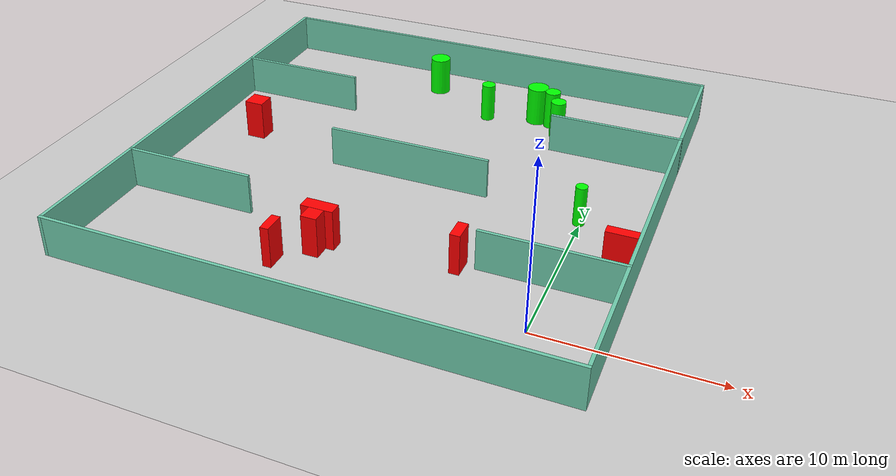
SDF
<sdf version="1.7">
 <world name="default">
  <light name="sun" type="directional">
   <pose>0 0 10 0 -0 0</pose>
   <diffuse>0.8 0.8 0.8 1</diffuse>
   <specular>0.2 0.2 0.2 1</specular>
   <attenuation>
    <range>1000</range>
    <constant>0.9</constant>
    <linear>0.01</linear>
    <quadratic>0.001</quadratic>
   </attenuation>
   <direction>-0.5 0.1 -0.9</direction>
   <spot><inner_angle>0</inner_angle><outer_angle>0</outer_angle><falloff>0</falloff></spot>
  </light>
  <model name="ground_plane">
   <static>1</static>
   <link name="link">
    <collision name="collision">
     <geometry><plane><normal>0 0 1</normal><size>100 100</size></plane></geometry>
     <surface>
      <contact><collide_bitmask>65535</collide_bitmask></contact>
      <friction><ode><mu>100</mu><mu2>50</mu2></ode></friction>
     </surface>
    </collision>
    <visual name="visual">
     <cast_shadows>0</cast_shadows>
     <geometry><plane><normal>0 0 1</normal><size>100 100</size></plane></geometry>
     <material>
      <script><uri>file://media/materials/scripts/gazebo.material</uri><name>Gazebo/Grey</name></script>
     </material>
    </visual>
   </link>
  </model>
  <gravity>0 0 -9.8</gravity>
  <magnetic_field>6e-06 2.3e-05 -4.2e-05</magnetic_field>
  <atmosphere type="adiabatic"/>
  <physics type="ode">
   <max_step_size>0.001</max_step_size>
   <real_time_factor>1</real_time_factor>
   <real_time_update_rate>1000</real_time_update_rate>
  </physics>
  <scene><ambient>0.4 0.4 0.4 1</ambient><background>0.7 0.7 0.7 1</background><shadows>1</shadows></scene>
  <spherical_coordinates>
   <surface_model>EARTH_WGS84</surface_model>
   <latitude_deg>0</latitude_deg>
   <longitude_deg>0</longitude_deg>
   <elevation>0</elevation>
   <heading_deg>0</heading_deg>
  </spherical_coordinates>
  <model name="my_base_walls">
   <link name="Wall_10">
    <collision name="Wall_10_Collision">
     <geometry><box><size>8.2 0.2 2.5</size></box></geometry>
     <pose>0 0 1.25 0 -0 0</pose>
    </collision>
    <visual name="Wall_10_Visual">
     <pose>0 0 1.25 0 -0 0</pose>
     <geometry><box><size>8.2 0.2 2.5</size></box></geometry>
     <material>
      <script><uri>file://media/materials/scripts/gazebo.material</uri><name>Gazebo/Grey</name></script>
      <ambient>0.435294 0.796078 0.67451 1</ambient>
     </material>
     <meta><layer>0</layer></meta>
    </visual>
    <pose>-11 -7 0 0 -0 0</pose>
   </link>
   <link name="Wall_12">
    <collision name="Wall_12_Collision">
     <geometry><box><size>8.2 0.2 2.5</size></box></geometry>
     <pose>0 0 1.25 0 -0 0</pose>
    </collision>
    <visual name="Wall_12_Visual">
     <pose>0 0 1.25 0 -0 0</pose>
     <geometry><box><size>8.2 0.2 2.5</size></box></geometry>
     <material>
      <script><uri>file://media/materials/scripts/gazebo.material</uri><name>Gazebo/Grey</name></script>
      <ambient>0.435294 0.796078 0.67451 1</ambient>
     </material>
     <meta><layer>0</layer></meta>
    </visual>
    <pose>-11 7 0 0 -0 0</pose>
   </link>
   <link name="Wall_14">
    <collision name="Wall_14_Collision">
     <geometry><box><size>8.2 0.2 2.5</size></box></geometry>
     <pose>0 0 1.25 0 -0 0</pose>
    </collision>
    <visual name="Wall_14_Visual">
     <pose>0 0 1.25 0 -0 0</pose>
     <geometry><box><size>8.2 0.2 2.5</size></box></geometry>
     <material>
      <script><uri>file://media/materials/scripts/gazebo.material</uri><name>Gazebo/Grey</name></script>
      <ambient>0.435294 0.796078 0.67451 1</ambient>
     </material>
     <meta><layer>0</layer></meta>
    </visual>
    <pose>11 7 0 0 -0 3.14159</pose>
   </link>
   <link name="Wall_16">
    <collision name="Wall_16_Collision">
     <geometry><box><size>10.2 0.2 2.5</size></box></geometry>
     <pose>0 0 1.25 0 -0 0</pose>
    </collision>
    <visual name="Wall_16_Visual">
     <pose>0 0 1.25 0 -0 0</pose>
     <geometry><box><size>10.2 0.2 2.5</size></box></geometry>
     <material>
      <script><uri>file://media/materials/scripts/gazebo.material</uri><name>Gazebo/Grey</name></script>
      <ambient>0.435294 0.796078 0.67451 1</ambient>
     </material>
     <meta><layer>0</layer></meta>
    </visual>
    <pose>0 0 0 0 -0 3.14159</pose>
   </link>
   <link name="Wall_2">
    <collision name="Wall_2_Collision">
     <geometry><box><size>30.2 0.2 2.5</size></box></geometry>
     <pose>0 0 1.25 0 -0 0</pose>
    </collision>
    <visual name="Wall_2_Visual">
     <pose>0 0 1.25 0 -0 0</pose>
     <geometry><box><size>30.2 0.2 2.5</size></box></geometry>
     <material>
      <script><uri>file://media/materials/scripts/gazebo.material</uri><name>Gazebo/Grey</name></script>
      <ambient>0.435294 0.796078 0.67451 1</ambient>
     </material>
     <meta><layer>0</layer></meta>
    </visual>
    <pose>0 -15 0 0 -0 3.14159</pose>
   </link>
   <link name="Wall_3">
    <collision name="Wall_3_Collision">
     <geometry><box><size>30.2 0.2 2.5</size></box></geometry>
     <pose>0 0 1.25 0 -0 0</pose>
    </collision>
    <visual name="Wall_3_Visual">
     <pose>0 0 1.25 0 -0 0</pose>
     <geometry><box><size>30.2 0.2 2.5</size></box></geometry>
     <material>
      <script><uri>file://media/materials/scripts/gazebo.material</uri><name>Gazebo/Grey</name></script>
      <ambient>0.435294 0.796078 0.67451 1</ambient>
     </material>
     <meta><layer>0</layer></meta>
    </visual>
    <pose>-15 0 0 0 -0 1.5708</pose>
   </link>
   <link name="Wall_4">
    <collision name="Wall_4_Collision">
     <geometry><box><size>30.2 0.2 2.5</size></box></geometry>
     <pose>0 0 1.25 0 -0 0</pose>
    </collision>
    <visual name="Wall_4_Visual">
     <pose>0 0 1.25 0 -0 0</pose>
     <geometry><box><size>30.2 0.2 2.5</size></box></geometry>
     <material>
      <script><uri>file://media/materials/scripts/gazebo.material</uri><name>Gazebo/Grey</name></script>
      <ambient>0.435294 0.796078 0.67451 1</ambient>
     </material>
     <meta><layer>0</layer></meta>
    </visual>
    <pose>0 15 0 0 -0 0</pose>
   </link>
   <link name="Wall_6">
    <collision name="Wall_6_Collision">
     <geometry><box><size>30.2 0.2 2.5</size></box></geometry>
     <pose>0 0 1.25 0 -0 0</pose>
    </collision>
    <visual name="Wall_6_Visual">
     <pose>0 0 1.25 0 -0 0</pose>
     <geometry><box><size>30.2 0.2 2.5</size></box></geometry>
     <material>
      <script><uri>file://media/materials/scripts/gazebo.material</uri><name>Gazebo/Grey</name></script>
      <ambient>0.435294 0.796078 0.67451 1</ambient>
     </material>
     <meta><layer>0</layer></meta>
    </visual>
    <pose>15 0 0 0 -0 1.5708</pose>
   </link>
   <link name="Wall_8">
    <collision name="Wall_8_Collision">
     <geometry><box><size>8.2 0.2 2.5</size></box></geometry>
     <pose>0 0 1.25 0 -0 0</pose>
    </collision>
    <visual name="Wall_8_Visual">
     <pose>0 0 1.25 0 -0 0</pose>
     <geometry><box><size>8.2 0.2 2.5</size></box></geometry>
     <material>
      <script><uri>file://media/materials/scripts/gazebo.material</uri><name>Gazebo/Grey</name></script>
      <ambient>0.435294 0.796078 0.67451 1</ambient>
     </material>
     <meta><layer>0</layer></meta>
    </visual>
    <pose>11 -7 0 0 -0 3.14159</pose>
   </link>
   <static>1</static>
   <pose>-11 11 0 0 -0 0</pose>
  </model>
  <model name="cylinder1">
   <static>1</static>
   <link name="link">
    <inertial>
     <mass>1</mass>
     <inertia><ixx>0.5</ixx><ixy>0</ixy><ixz>0</ixz><iyy>0.5</iyy><iyz>0</iyz><izz>1</izz></inertia>
    </inertial>
    <collision name="collision">
     <geometry><cylinder><radius>0.6645167405015341</radius><length>2.5</length></cylinder></geometry>
    </collision>
    <visual name="visual">
     <geometry><cylinder><radius>0.6645167405015341</radius><length>2.5</length></cylinder></geometry>
     <material>
      <ambient>0 1 0 1</ambient>
      <diffuse>0 1 0 1</diffuse>
      <specular>0.1 0.1 0.1 1</specular>
      <emissive>0 0 0 0</emissive>
     </material>
    </visual>
   </link>
   <pose>-13.695134715741313 23.195944299623775 1.25 0 0 0</pose>
  </model>
  <model name="cylinder2">
   <static>1</static>
   <link name="link">
    <inertial>
     <mass>1</mass>
     <inertia><ixx>0.5</ixx><ixy>0</ixy><ixz>0</ixz><iyy>0.5</iyy><iyz>0</iyz><izz>1</izz></inertia>
    </inertial>
    <collision name="collision">
     <geometry><cylinder><radius>0.350559668870479</radius><length>2.5</length></cylinder></geometry>
    </collision>
    <visual name="visual">
     <geometry><cylinder><radius>0.350559668870479</radius><length>2.5</length></cylinder></geometry>
     <material>
      <ambient>0 1 0 1</ambient>
      <diffuse>0 1 0 1</diffuse>
      <specular>0.1 0.1 0.1 1</specular>
      <emissive>0 0 0 0</emissive>
     </material>
    </visual>
   </link>
   <pose>-0.12141736054156027 10.364528200810332 1.25 0 0 0</pose>
  </model>
  <model name="cylinder3">
   <static>1</static>
   <link name="link">
    <inertial>
     <mass>1</mass>
     <inertia><ixx>0.5</ixx><ixy>0</ixy><ixz>0</ixz><iyy>0.5</iyy><iyz>0</iyz><izz>1</izz></inertia>
    </inertial>
    <collision name="collision">
     <geometry><cylinder><radius>0.4944602436759216</radius><length>2.5</length></cylinder></geometry>
    </collision>
    <visual name="visual">
     <geometry><cylinder><radius>0.4944602436759216</radius><length>2.5</length></cylinder></geometry>
     <material>
      <ambient>0 1 0 1</ambient>
      <diffuse>0 1 0 1</diffuse>
      <specular>0.1 0.1 0.1 1</specular>
      <emissive>0 0 0 0</emissive>
     </material>
    </visual>
   </link>
   <pose>-4.911199126897094 21.16756556347756 1.25 0 0 0</pose>
  </model>
  <model name="cylinder4">
   <static>1</static>
   <link name="link">
    <inertial>
     <mass>1</mass>
     <inertia><ixx>0.5</ixx><ixy>0</ixy><ixz>0</ixz><iyy>0.5</iyy><iyz>0</iyz><izz>1</izz></inertia>
    </inertial>
    <collision name="collision">
     <geometry><cylinder><radius>0.48746293158619347</radius><length>2.5</length></cylinder></geometry>
    </collision>
    <visual name="visual">
     <geometry><cylinder><radius>0.48746293158619347</radius><length>2.5</length></cylinder></geometry>
     <material>
      <ambient>0 1 0 1</ambient>
      <diffuse>0 1 0 1</diffuse>
      <specular>0.1 0.1 0.1 1</specular>
      <emissive>0 0 0 0</emissive>
     </material>
    </visual>
   </link>
   <pose>-4.177041385016567 19.92156102585916 1.25 0 0 0</pose>
  </model>
  <model name="cylinder5">
   <static>1</static>
   <link name="link">
    <inertial>
     <mass>1</mass>
     <inertia><ixx>0.5</ixx><ixy>0</ixy><ixz>0</ixz><iyy>0.5</iyy><iyz>0</iyz><izz>1</izz></inertia>
    </inertial>
    <collision name="collision">
     <geometry><cylinder><radius>0.4403660251413735</radius><length>2.5</length></cylinder></geometry>
    </collision>
    <visual name="visual">
     <geometry><cylinder><radius>0.4403660251413735</radius><length>2.5</length></cylinder></geometry>
     <material>
      <ambient>0 1 0 1</ambient>
      <diffuse>0 1 0 1</diffuse>
      <specular>0.1 0.1 0.1 1</specular>
      <emissive>0 0 0 0</emissive>
     </material>
    </visual>
   </link>
   <pose>-9.192575191371645 20.554170632005075 1.25 0 0 0</pose>
  </model>
  <model name="cylinder6">
   <static>1</static>
   <link name="link">
    <inertial>
     <mass>1</mass>
     <inertia><ixx>0.5</ixx><ixy>0</ixy><ixz>0</ixz><iyy>0.5</iyy><iyz>0</iyz><izz>1</izz></inertia>
    </inertial>
    <collision name="collision">
     <geometry><cylinder><radius>0.6864144885762339</radius><length>2.5</length></cylinder></geometry>
    </collision>
    <visual name="visual">
     <geometry><cylinder><radius>0.6864144885762339</radius><length>2.5</length></cylinder></geometry>
     <material>
      <ambient>0 1 0 1</ambient>
      <diffuse>0 1 0 1</diffuse>
      <specular>0.1 0.1 0.1 1</specular>
      <emissive>0 0 0 0</emissive>
     </material>
    </visual>
   </link>
   <pose>-6.003151227694069 21.45757557261639 1.25 0 0 0</pose>
  </model>
  <model name="box1">
   <static>1</static>
   <link name="link">
    <inertial>
     <mass>1</mass>
     <inertia><ixx>0.083</ixx><ixy>0</ixy><ixz>0</ixz><iyy>0.083</iyy><iyz>0</iyz><izz>0.083</izz></inertia>
    </inertial>
    <collision name="collision">
     <geometry><box><size>1.9537921404666747 0.8094193595782859 2.5</size></box></geometry>
    </collision>
    <visual name="visual">
     <geometry><box><size>1.9537921404666747 0.8094193595782859 2.5</size></box></geometry>
     <material>
      <ambient>1 0 0 1</ambient>
      <diffuse>1 0 0 1</diffuse>
      <specular>0.1 0.1 0.1 1</specular>
      <emissive>0 0 0 0</emissive>
     </material>
    </visual>
    <sensor name="my_contact" type="contact">
     <contact><collision>box_collision</collision><topic>__default_topic__</topic></contact>
    </sensor>
   </link>
   <pose>-12.770912900306273 2.87643584302754 1.25 0 0 0</pose>
  </model>
  <model name="box2">
   <static>1</static>
   <link name="link">
    <inertial>
     <mass>1</mass>
     <inertia><ixx>0.083</ixx><ixy>0</ixy><ixz>0</ixz><iyy>0.083</iyy><iyz>0</iyz><izz>0.083</izz></inertia>
    </inertial>
    <collision name="collision">
     <geometry><box><size>1.2014523907014696 1.1598136198430091 2.5</size></box></geometry>
    </collision>
    <visual name="visual">
     <geometry><box><size>1.2014523907014696 1.1598136198430091 2.5</size></box></geometry>
     <material>
      <ambient>1 0 0 1</ambient>
      <diffuse>1 0 0 1</diffuse>
      <specular>0.1 0.1 0.1 1</specular>
      <emissive>0 0 0 0</emissive>
     </material>
    </visual>
    <sensor name="my_contact" type="contact">
     <contact><collision>box_collision</collision><topic>__default_topic__</topic></contact>
    </sensor>
   </link>
   <pose>-22.292828720239694 12.552560922178696 1.25 0 0 0</pose>
  </model>
  <model name="box3">
   <static>1</static>
   <link name="link">
    <inertial>
     <mass>1</mass>
     <inertia><ixx>0.083</ixx><ixy>0</ixy><ixz>0</ixz><iyy>0.083</iyy><iyz>0</iyz><izz>0.083</izz></inertia>
    </inertial>
    <collision name="collision">
     <geometry><box><size>0.5202043561408398 1.3200359602507974 2.5</size></box></geometry>
    </collision>
    <visual name="visual">
     <geometry><box><size>0.5202043561408398 1.3200359602507974 2.5</size></box></geometry>
     <material>
      <ambient>1 0 0 1</ambient>
      <diffuse>1 0 0 1</diffuse>
      <specular>0.1 0.1 0.1 1</specular>
      <emissive>0 0 0 0</emissive>
     </material>
    </visual>
    <sensor name="my_contact" type="contact">
     <contact><collision>box_collision</collision><topic>__default_topic__</topic></contact>
    </sensor>
   </link>
   <pose>-14.42144117494098 0.3659997697671056 1.25 0 0 0</pose>
  </model>
  <model name="box4">
   <static>1</static>
   <link name="link">
    <inertial>
     <mass>1</mass>
     <inertia><ixx>0.083</ixx><ixy>0</ixy><ixz>0</ixz><iyy>0.083</iyy><iyz>0</iyz><izz>0.083</izz></inertia>
    </inertial>
    <collision name="collision">
     <geometry><box><size>0.5957154967513405 1.3024060492696612 2.5</size></box></geometry>
    </collision>
    <visual name="visual">
     <geometry><box><size>0.5957154967513405 1.3024060492696612 2.5</size></box></geometry>
     <material>
      <ambient>1 0 0 1</ambient>
      <diffuse>1 0 0 1</diffuse>
      <specular>0.1 0.1 0.1 1</specular>
      <emissive>0 0 0 0</emissive>
     </material>
    </visual>
    <sensor name="my_contact" type="contact">
     <contact><collision>box_collision</collision><topic>__default_topic__</topic></contact>
    </sensor>
   </link>
   <pose>-4.961429677460458 3.6887201975434367 1.25 0 0 0</pose>
  </model>
  <model name="box5">
   <static>1</static>
   <link name="link">
    <inertial>
     <mass>1</mass>
     <inertia><ixx>0.083</ixx><ixy>0</ixy><ixz>0</ixz><iyy>0.083</iyy><iyz>0</iyz><izz>0.083</izz></inertia>
    </inertial>
    <collision name="collision">
     <geometry><box><size>1.773513415144169 0.630930130404313 2.5</size></box></geometry>
    </collision>
    <visual name="visual">
     <geometry><box><size>1.773513415144169 0.630930130404313 2.5</size></box></geometry>
     <material>
      <ambient>1 0 0 1</ambient>
      <diffuse>1 0 0 1</diffuse>
      <specular>0.1 0.1 0.1 1</specular>
      <emissive>0 0 0 0</emissive>
     </material>
    </visual>
    <sensor name="my_contact" type="contact">
     <contact><collision>box_collision</collision><topic>__default_topic__</topic></contact>
    </sensor>
   </link>
   <pose>3.0016383543047205 6.798540468726644 1.25 0 0 0</pose>
  </model>
  <model name="box6">
   <static>1</static>
   <link name="link">
    <inertial>
     <mass>1</mass>
     <inertia><ixx>0.083</ixx><ixy>0</ixy><ixz>0</ixz><iyy>0.083</iyy><iyz>0</iyz><izz>0.083</izz></inertia>
    </inertial>
    <collision name="collision">
     <geometry><box><size>0.9446314132498608 0.9946739404912497 2.5</size></box></geometry>
    </collision>
    <visual name="visual">
     <geometry><box><size>0.9446314132498608 0.9946739404912497 2.5</size></box></geometry>
     <material>
      <ambient>1 0 0 1</ambient>
      <diffuse>1 0 0 1</diffuse>
      <specular>0.1 0.1 0.1 1</specular>
      <emissive>0 0 0 0</emissive>
     </material>
    </visual>
    <sensor name="my_contact" type="contact">
     <contact><collision>box_collision</collision><topic>__default_topic__</topic></contact>
    </sensor>
   </link>
   <pose>-12.757440475799518 2.011751913123911 1.25 0 0 0</pose>
  </model>
 </world>
</sdf>
